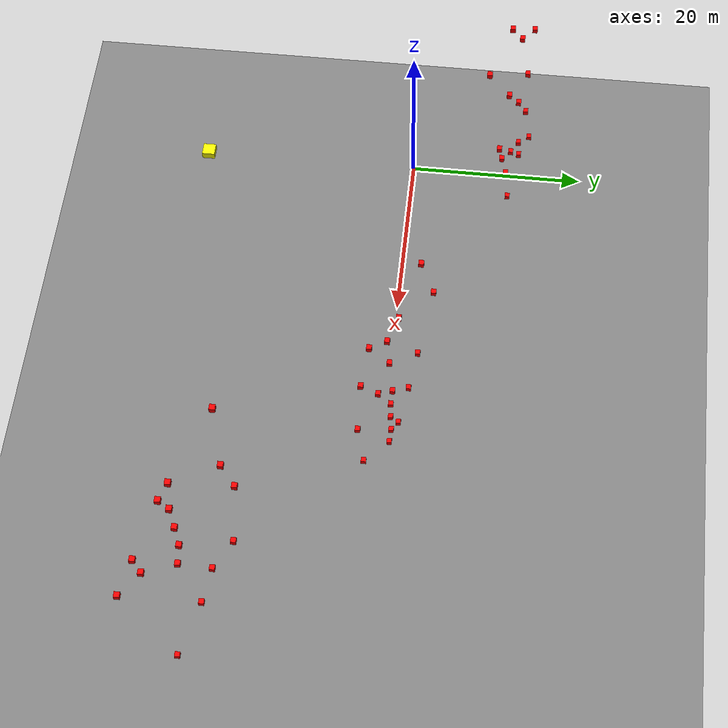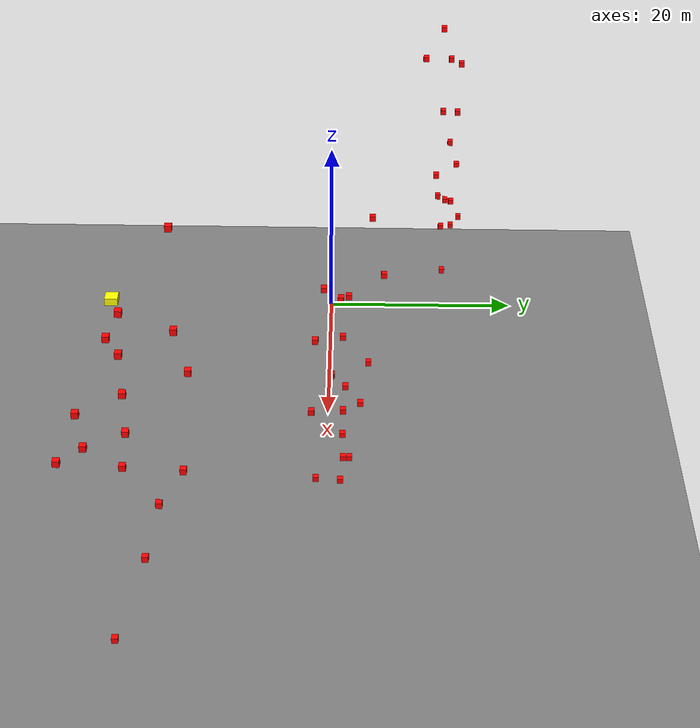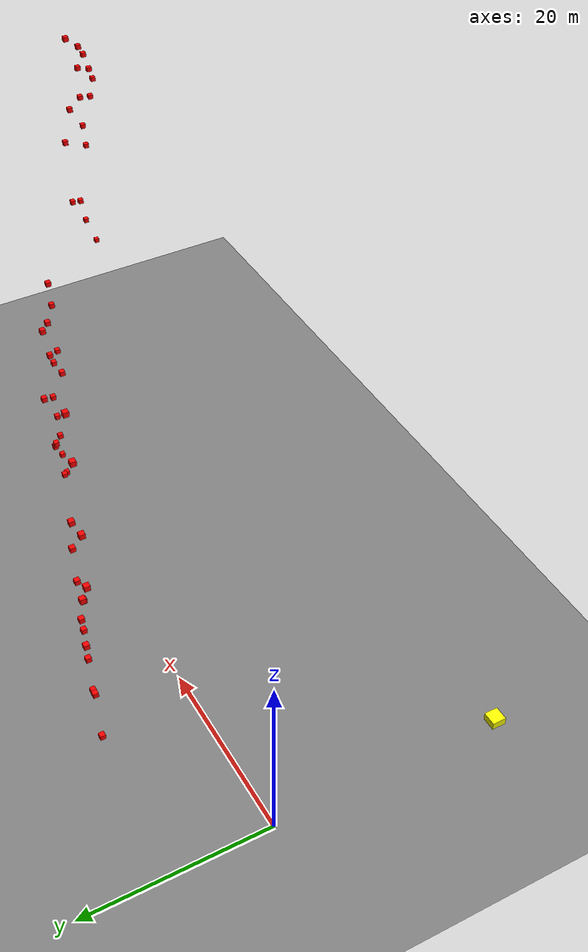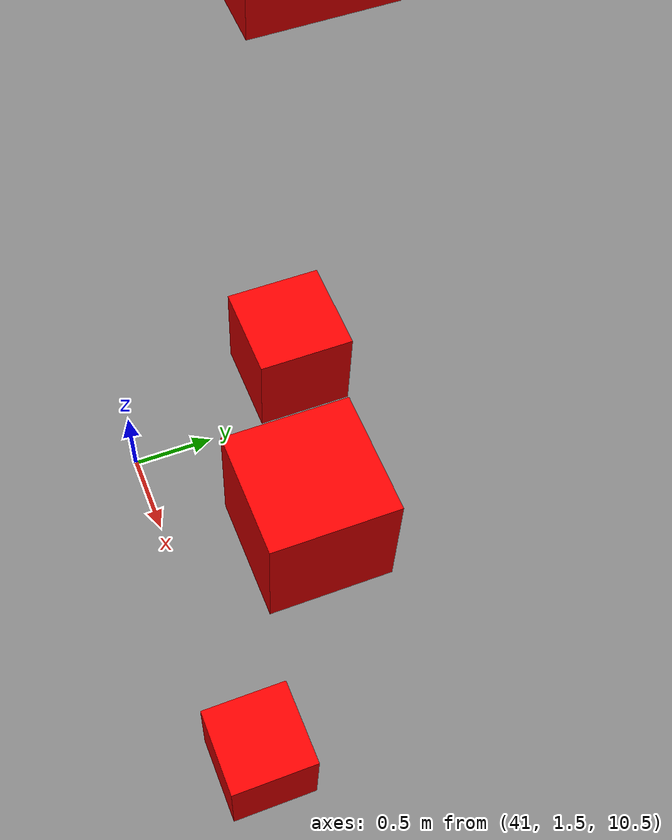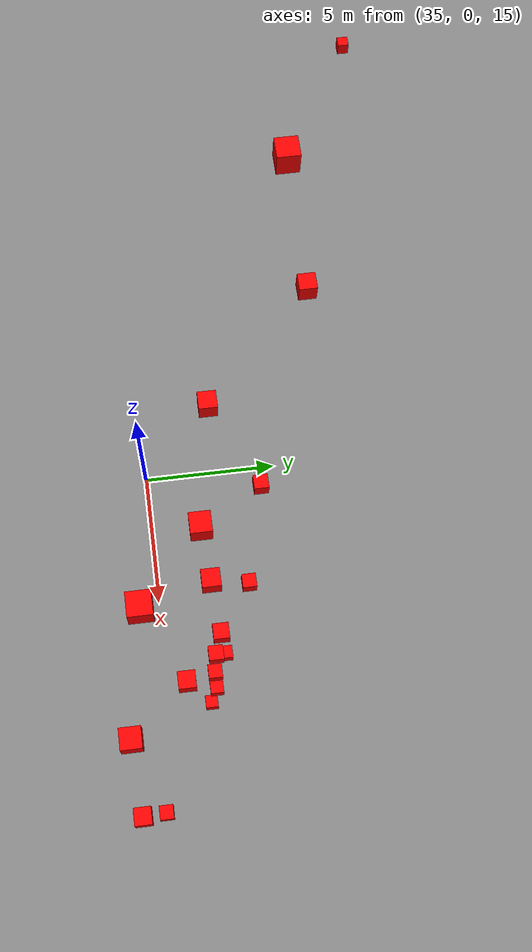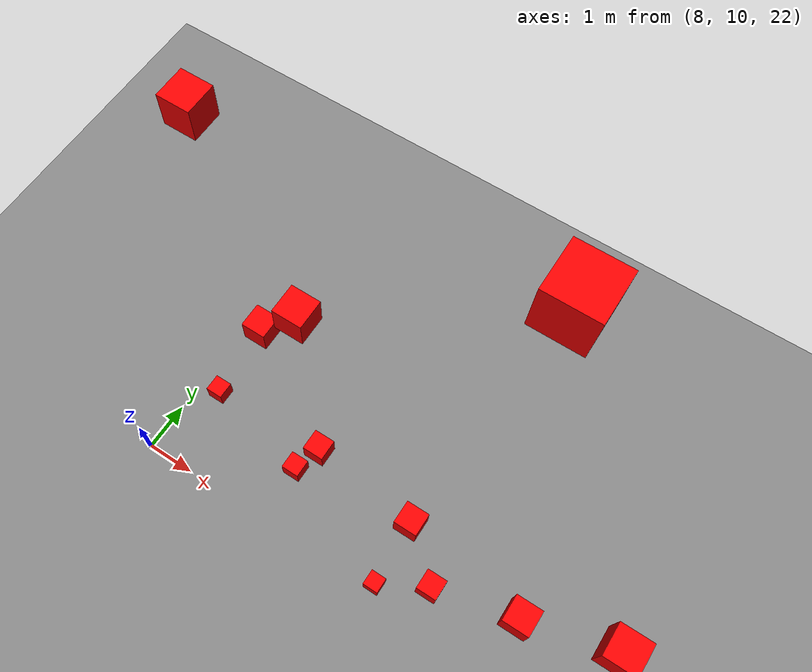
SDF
<sdf version="1.8">
 <world name="mbs_50_poi">
  <gravity>0 0 -9.8</gravity>
  <light name="sun" type="directional">
   <pose>0 0 10 0 -0 0</pose>
   <diffuse>0.8 0.8 0.8 1</diffuse>
   <specular>0.1 0.1 0.1 1</specular>
   <attenuation>
    <range>1000</range>
    <constant>0.9</constant>
    <linear>0.01</linear>
    <quadratic>0.001</quadratic>
   </attenuation>
   <direction>-0.5 0.5 -1</direction>
  </light>
  <model name="ground_plane">
   <static>true</static>
   <link name="link">
    <collision name="collision">
     <geometry><plane><normal>0 0 1</normal><size>2000 2000</size></plane></geometry>
     <surface><friction><ode><mu>100</mu><mu2>50</mu2></ode></friction></surface>
    </collision>
    <visual name="visual">
     <cast_shadows>false</cast_shadows>
     <geometry><plane><normal>0 0 1</normal><size>2000 2000</size></plane></geometry>
     <material>
      <ambient>0.5 0.5 0.5 1</ambient>
      <diffuse>0.5 0.5 0.5 1</diffuse>
      <specular>0.1 0.1 0.1 1</specular>
     </material>
    </visual>
   </link>
  </model>
  <model name="gcs">
   <pose>0 -25 0 0.0 0.0 0.0</pose>
   <static>true</static>
   <link name="link">
    <collision name="collision">
     <geometry><box><size>1.5 1.5 1.5</size></box></geometry>
     <surface><friction><ode><mu>0.8</mu><mu2>0.8</mu2></ode></friction></surface>
    </collision>
    <visual name="visual">
     <geometry><box><size>1.5 1.5 1.5</size></box></geometry>
     <material>
      <ambient>1.0 1.0 0.0 1.0</ambient>
      <diffuse>1.0 1.0 0.0 1.0</diffuse>
      <specular>1.0 0.2 0.0 1.0</specular>
     </material>
    </visual>
   </link>
  </model>
  <model name="poi_0000">
   <static>true</static>
   <link name="link">
    <visual name="visual">
     <geometry><box><size>0.5 0.5 0.5</size></box></geometry>
     <material><ambient>1 0 0 1</ambient><diffuse>1 0 0 1</diffuse><specular>0.2 0 0 1</specular></material>
    </visual>
   </link>
   <pose>12.574999809265137 11.559514999389648 13.199999809265137 0 0 0</pose>
  </model>
  <model name="poi_0001">
   <static>true</static>
   <link name="link">
    <visual name="visual">
     <geometry><box><size>0.5 0.5 0.5</size></box></geometry>
     <material><ambient>1 0 0 1</ambient><diffuse>1 0 0 1</diffuse><specular>0.2 0 0 1</specular></material>
    </visual>
   </link>
   <pose>9.3999996185302734 11.84 35.818099975585938 0 0 0</pose>
  </model>
  <model name="poi_0002">
   <static>true</static>
   <link name="link">
    <visual name="visual">
     <geometry><box><size>0.5 0.5 0.5</size></box></geometry>
     <material><ambient>1 0 0 1</ambient><diffuse>1 0 0 1</diffuse><specular>0.2 0 0 1</specular></material>
    </visual>
   </link>
   <pose>5.908289909362793 13.417082786560059 15.538000106811523 0 0 0</pose>
  </model>
  <model name="poi_0003">
   <static>true</static>
   <link name="link">
    <visual name="visual">
     <geometry><box><size>0.5 0.5 0.5</size></box></geometry>
     <material><ambient>1 0 0 1</ambient><diffuse>1 0 0 1</diffuse><specular>0.2 0 0 1</specular></material>
    </visual>
   </link>
   <pose>9.3999996185302734 12.43675422668457 16.707000732421875 0 0 0</pose>
  </model>
  <model name="poi_0004">
   <static>true</static>
   <link name="link">
    <visual name="visual">
     <geometry><box><size>0.5 0.5 0.5</size></box></geometry>
     <material><ambient>1 0 0 1</ambient><diffuse>1 0 0 1</diffuse><specular>0.2 0 0 1</specular></material>
    </visual>
   </link>
   <pose>18.264999389648438 9.00 40.39630126953125 0 0 0</pose>
  </model>
  <model name="poi_0005">
   <static>true</static>
   <link name="link">
    <visual name="visual">
     <geometry><box><size>0.5 0.5 0.5</size></box></geometry>
     <material><ambient>1 0 0 1</ambient><diffuse>1 0 0 1</diffuse><specular>0.2 0 0 1</specular></material>
    </visual>
   </link>
   <pose>14.155799865722656 11.184494018554688 19.538700103759766 0 0 0</pose>
  </model>
  <model name="poi_0006">
   <static>true</static>
   <link name="link">
    <visual name="visual">
     <geometry><box><size>0.5 0.5 0.5</size></box></geometry>
     <material><ambient>1 0 0 1</ambient><diffuse>1 0 0 1</diffuse><specular>0.2 0 0 1</specular></material>
    </visual>
   </link>
   <pose>10.444700241088867 12.299572944641113 20.214000701904297 0 0 0</pose>
  </model>
  <model name="poi_0007">
   <static>true</static>
   <link name="link">
    <visual name="visual">
     <geometry><box><size>0.5 0.5 0.5</size></box></geometry>
     <material><ambient>1 0 0 1</ambient><diffuse>1 0 0 1</diffuse><specular>0.2 0 0 1</specular></material>
    </visual>
   </link>
   <pose>12.406000137329102 10.834890365600586 40.570499420166016 0 0 0</pose>
  </model>
  <model name="poi_0008">
   <static>true</static>
   <link name="link">
    <visual name="visual">
     <geometry><box><size>0.5 0.5 0.5</size></box></geometry>
     <material><ambient>1 0 0 1</ambient><diffuse>1 0 0 1</diffuse><specular>0.2 0 0 1</specular></material>
    </visual>
   </link>
   <pose>13.218099594116211 11.557124137878418 22.072299957275391 0 0 0</pose>
  </model>
  <model name="poi_0009">
   <static>true</static>
   <link name="link">
    <visual name="visual">
     <geometry><box><size>0.5 0.5 0.5</size></box></geometry>
     <material><ambient>1 0 0 1</ambient><diffuse>1 0 0 1</diffuse><specular>0.2 0 0 1</specular></material>
    </visual>
   </link>
   <pose>8.96 12.795768737792969 23.721000671386719 0 0 0</pose>
  </model>
  <model name="poi_0010">
   <static>true</static>
   <link name="link">
    <visual name="visual">
     <geometry><box><size>0.5 0.5 0.5</size></box></geometry>
     <material><ambient>1 0 0 1</ambient><diffuse>1 0 0 1</diffuse><specular>0.2 0 0 1</specular></material>
    </visual>
   </link>
   <pose>15.722100257873535 10.695314407348633 24.046199798583984 0 0 0</pose>
  </model>
  <model name="poi_0011">
   <static>true</static>
   <link name="link">
    <visual name="visual">
     <geometry><box><size>0.5 0.5 0.5</size></box></geometry>
     <material><ambient>1 0 0 1</ambient><diffuse>1 0 0 1</diffuse><specular>0.2 0 0 1</specular></material>
    </visual>
   </link>
   <pose>14.22029972076416 10.983824729919434 32.6343994140625 0 0 0</pose>
  </model>
  <model name="poi_0012">
   <static>true</static>
   <link name="link">
    <visual name="visual">
     <geometry><box><size>0.5 0.5 0.5</size></box></geometry>
     <material><ambient>1 0 0 1</ambient><diffuse>1 0 0 1</diffuse><specular>0.2 0 0 1</specular></material>
    </visual>
   </link>
   <pose>10.657299995422363 11.966388702392578 27.228000640869141 0 0 0</pose>
  </model>
  <model name="poi_0013">
   <static>true</static>
   <link name="link">
    <visual name="visual">
     <geometry><box><size>0.5 0.5 0.5</size></box></geometry>
     <material><ambient>1 0 0 1</ambient><diffuse>1 0 0 1</diffuse><specular>0.2 0 0 1</specular></material>
    </visual>
   </link>
   <pose>16.750999450683594 10.405607223510742 26.993900299072266 0 0 0</pose>
  </model>
  <model name="poi_0014">
   <static>true</static>
   <link name="link">
    <visual name="visual">
     <geometry><box><size>0.5 0.5 0.5</size></box></geometry>
     <material><ambient>1 0 0 1</ambient><diffuse>1 0 0 1</diffuse><specular>0.2 0 0 1</specular></material>
    </visual>
   </link>
   <pose>8.6825199127197266 12.692320823669434 29.565999984741211 0 0 0</pose>
  </model>
  <model name="poi_0015">
   <static>true</static>
   <link name="link">
    <visual name="visual">
     <geometry><box><size>0.5 0.5 0.5</size></box></geometry>
     <material><ambient>1 0 0 1</ambient><diffuse>1 0 0 1</diffuse><specular>0.2 0 0 1</specular></material>
    </visual>
   </link>
   <pose>6.1462101936340332 13.03 33.647201538085938 0 0 0</pose>
  </model>
  <model name="poi_0016">
   <static>true</static>
   <link name="link">
    <visual name="visual">
     <geometry><box><size>0.5 0.5 0.5</size></box></geometry>
     <material><ambient>1 0 0 1</ambient><diffuse>1 0 0 1</diffuse><specular>0.2 0 0 1</specular></material>
    </visual>
   </link>
   <pose>43.090000152587891 1.5681102275848389 10.590000152587891 0 0 0</pose>
  </model>
  <model name="poi_0017">
   <static>true</static>
   <link name="link">
    <visual name="visual">
     <geometry><box><size>0.5 0.5 0.5</size></box></geometry>
     <material><ambient>1 0 0 1</ambient><diffuse>1 0 0 1</diffuse><specular>0.2 0 0 1</specular></material>
    </visual>
   </link>
   <pose>41.467601776123047 2.3524768352508545 11.916999816894531 0 0 0</pose>
  </model>
  <model name="poi_0018">
   <static>true</static>
   <link name="link">
    <visual name="visual">
     <geometry><box><size>0.5 0.5 0.5</size></box></geometry>
     <material><ambient>1 0 0 1</ambient><diffuse>1 0 0 1</diffuse><specular>0.2 0 0 1</specular></material>
    </visual>
   </link>
   <pose>43.090000152587891 1.7920757532119751 13.244000434875488 0 0 0</pose>
  </model>
  <model name="poi_0019">
   <static>true</static>
   <link name="link">
    <visual name="visual">
     <geometry><box><size>0.5 0.5 0.5</size></box></geometry>
     <material><ambient>1 0 0 1</ambient><diffuse>1 0 0 1</diffuse><specular>0.2 0 0 1</specular></material>
    </visual>
   </link>
   <pose>47.593257904052734 -0.51557397842407227 14.571000099182129 0 0 0</pose>
  </model>
  <model name="poi_0020">
   <static>true</static>
   <link name="link">
    <visual name="visual">
     <geometry><box><size>0.5 0.5 0.5</size></box></geometry>
     <material><ambient>1 0 0 1</ambient><diffuse>1 0 0 1</diffuse><specular>0.2 0 0 1</specular></material>
    </visual>
   </link>
   <pose>43.090000152587891 1.7522130012512207 15.89799976348877 0 0 0</pose>
  </model>
  <model name="poi_0021">
   <static>true</static>
   <link name="link">
    <visual name="visual">
     <geometry><box><size>0.5 0.5 0.5</size></box></geometry>
     <material><ambient>1 0 0 1</ambient><diffuse>1 0 0 1</diffuse><specular>0.2 0 0 1</specular></material>
    </visual>
   </link>
   <pose>40.321701049804688 3.299736499786377 17.225000381469727 0 0 0</pose>
  </model>
  <model name="poi_0022">
   <static>true</static>
   <link name="link">
    <visual name="visual">
     <geometry><box><size>0.5 0.5 0.5</size></box></geometry>
     <material><ambient>1 0 0 1</ambient><diffuse>1 0 0 1</diffuse><specular>0.2 0 0 1</specular></material>
    </visual>
   </link>
   <pose>43.090000152587891 1.7990800142288208 18.552000045776367 0 0 0</pose>
  </model>
  <model name="poi_0023">
   <static>true</static>
   <link name="link">
    <visual name="visual">
     <geometry><box><size>0.5 0.5 0.5</size></box></geometry>
     <material><ambient>1 0 0 1</ambient><diffuse>1 0 0 1</diffuse><specular>0.2 0 0 1</specular></material>
    </visual>
   </link>
   <pose>37.762100219726562 3.969306468963623 19.878999710083008 0 0 0</pose>
  </model>
  <model name="poi_0024">
   <static>true</static>
   <link name="link">
    <visual name="visual">
     <geometry><box><size>0.5 0.5 0.5</size></box></geometry>
     <material><ambient>1 0 0 1</ambient><diffuse>1 0 0 1</diffuse><specular>0.2 0 0 1</specular></material>
    </visual>
   </link>
   <pose>43.090000152587891 1.9758154153823853 21.205999374389648 0 0 0</pose>
  </model>
  <model name="poi_0025">
   <static>true</static>
   <link name="link">
    <visual name="visual">
     <geometry><box><size>0.5 0.5 0.5</size></box></geometry>
     <material><ambient>1 0 0 1</ambient><diffuse>1 0 0 1</diffuse><specular>0.2 0 0 1</specular></material>
    </visual>
   </link>
   <pose>48.405300140380859 -0.83510744571685791 22.533000946044922 0 0 0</pose>
  </model>
  <model name="poi_0026">
   <static>true</static>
   <link name="link">
    <visual name="visual">
     <geometry><box><size>0.5 0.5 0.5</size></box></geometry>
     <material><ambient>1 0 0 1</ambient><diffuse>1 0 0 1</diffuse><specular>0.2 0 0 1</specular></material>
    </visual>
   </link>
   <pose>45.056800842285156 0.8009980320930481 23.860000610351562 0 0 0</pose>
  </model>
  <model name="poi_0027">
   <static>true</static>
   <link name="link">
    <visual name="visual">
     <geometry><box><size>0.5 0.5 0.5</size></box></geometry>
     <material><ambient>1 0 0 1</ambient><diffuse>1 0 0 1</diffuse><specular>0.2 0 0 1</specular></material>
    </visual>
   </link>
   <pose>36.79 4.14 34.59 0 0 0</pose>
  </model>
  <model name="poi_0028">
   <static>true</static>
   <link name="link">
    <visual name="visual">
     <geometry><box><size>0.5 0.5 0.5</size></box></geometry>
     <material><ambient>1 0 0 1</ambient><diffuse>1 0 0 1</diffuse><specular>0.2 0 0 1</specular></material>
    </visual>
   </link>
   <pose>43.090000152587891 1.728690505027771 26.513999938964844 0 0 0</pose>
  </model>
  <model name="poi_0029">
   <static>true</static>
   <link name="link">
    <visual name="visual">
     <geometry><box><size>0.5 0.5 0.5</size></box></geometry>
     <material><ambient>1 0 0 1</ambient><diffuse>1 0 0 1</diffuse><specular>0.2 0 0 1</specular></material>
    </visual>
   </link>
   <pose>35.493400573730469 5.2652435302734375 27.840999603271484 0 0 0</pose>
  </model>
  <model name="poi_0030">
   <static>true</static>
   <link name="link">
    <visual name="visual">
     <geometry><box><size>0.5 0.5 0.5</size></box></geometry>
     <material><ambient>1 0 0 1</ambient><diffuse>1 0 0 1</diffuse><specular>0.2 0 0 1</specular></material>
    </visual>
   </link>
   <pose>47.38201904296875 -0.50696998834609985 29.167999267578125 0 0 0</pose>
  </model>
  <model name="poi_0031">
   <static>true</static>
   <link name="link">
    <visual name="visual">
     <geometry><box><size>0.5 0.5 0.5</size></box></geometry>
     <material><ambient>1 0 0 1</ambient><diffuse>1 0 0 1</diffuse><specular>0.2 0 0 1</specular></material>
    </visual>
   </link>
   <pose>43.090000152587891 1.5447119474411011 30.495000839233398 0 0 0</pose>
  </model>
  <model name="poi_0032">
   <static>true</static>
   <link name="link">
    <visual name="visual">
     <geometry><box><size>0.5 0.5 0.5</size></box></geometry>
     <material><ambient>1 0 0 1</ambient><diffuse>1 0 0 1</diffuse><specular>0.2 0 0 1</specular></material>
    </visual>
   </link>
   <pose>38.603599548339844 2.177570104598999 27.622108459472656 0 0 0</pose>
  </model>
  <model name="poi_0033">
   <static>true</static>
   <link name="link">
    <visual name="visual">
     <geometry><box><size>0.5 0.5 0.5</size></box></geometry>
     <material><ambient>1 0 0 1</ambient><diffuse>1 0 0 1</diffuse><specular>0.2 0 0 1</specular></material>
    </visual>
   </link>
   <pose>45.594970703125 0.16066500544548035 33.148998260498047 0 0 0</pose>
  </model>
  <model name="poi_0034">
   <static>true</static>
   <link name="link">
    <visual name="visual">
     <geometry><box><size>0.5 0.5 0.5</size></box></geometry>
     <material><ambient>1 0 0 1</ambient><diffuse>1 0 0 1</diffuse><specular>0.2 0 0 1</specular></material>
    </visual>
   </link>
   <pose>68.571098327636719 -13.788274765014648 33.130001068115234 0 0 0</pose>
  </model>
  <model name="poi_0035">
   <static>true</static>
   <link name="link">
    <visual name="visual">
     <geometry><box><size>0.5 0.5 0.5</size></box></geometry>
     <material><ambient>1 0 0 1</ambient><diffuse>1 0 0 1</diffuse><specular>0.2 0 0 1</specular></material>
    </visual>
   </link>
   <pose>64.239799499511719 -9.9481945037841797 29.21980094909668 0 0 0</pose>
  </model>
  <model name="poi_0036">
   <static>true</static>
   <link name="link">
    <visual name="visual">
     <geometry><box><size>0.5 0.5 0.5</size></box></geometry>
     <material><ambient>1 0 0 1</ambient><diffuse>1 0 0 1</diffuse><specular>0.2 0 0 1</specular></material>
    </visual>
   </link>
   <pose>68.080001831054688 -12.708561897277832 23.89900016784668 0 0 0</pose>
  </model>
  <model name="poi_0037">
   <static>true</static>
   <link name="link">
    <visual name="visual">
     <geometry><box><size>0.5 0.5 0.5</size></box></geometry>
     <material><ambient>1 0 0 1</ambient><diffuse>1 0 0 1</diffuse><specular>0.2 0 0 1</specular></material>
    </visual>
   </link>
   <pose>62.910900115966797 -9.372319221496582 37.474498748779297 0 0 0</pose>
  </model>
  <model name="poi_0038">
   <static>true</static>
   <link name="link">
    <visual name="visual">
     <geometry><box><size>0.5 0.5 0.5</size></box></geometry>
     <material><ambient>1 0 0 1</ambient><diffuse>1 0 0 1</diffuse><specular>0.2 0 0 1</specular></material>
    </visual>
   </link>
   <pose>68.080001831054688 -13.454799652099609 35.889999389648438 0 0 0</pose>
  </model>
  <model name="poi_0039">
   <static>true</static>
   <link name="link">
    <visual name="visual">
     <geometry><box><size>0.5 0.5 0.5</size></box></geometry>
     <material><ambient>1 0 0 1</ambient><diffuse>1 0 0 1</diffuse><specular>0.2 0 0 1</specular></material>
    </visual>
   </link>
   <pose>71.757499694824219 -16.185430526733398 40.422100067138672 0 0 0</pose>
  </model>
  <model name="poi_0040">
   <static>true</static>
   <link name="link">
    <visual name="visual">
     <geometry><box><size>0.5 0.5 0.5</size></box></geometry>
     <material><ambient>1 0 0 1</ambient><diffuse>1 0 0 1</diffuse><specular>0.2 0 0 1</specular></material>
    </visual>
   </link>
   <pose>71.474800109863281 -15.929194450378418 37.270000457763672 0 0 0</pose>
  </model>
  <model name="poi_0041">
   <static>true</static>
   <link name="link">
    <visual name="visual">
     <geometry><box><size>0.5 0.5 0.5</size></box></geometry>
     <material><ambient>1 0 0 1</ambient><diffuse>1 0 0 1</diffuse><specular>0.2 0 0 1</specular></material>
    </visual>
   </link>
   <pose>73.964599609375 -17.37324333190918 37.959999084472656 0 0 0</pose>
  </model>
  <model name="poi_0042">
   <static>true</static>
   <link name="link">
    <visual name="visual">
     <geometry><box><size>0.5 0.5 0.5</size></box></geometry>
     <material><ambient>1 0 0 1</ambient><diffuse>1 0 0 1</diffuse><specular>0.2 0 0 1</specular></material>
    </visual>
   </link>
   <pose>62.901901245117188 -10.250583648681641 41.135601043701172 0 0 0</pose>
  </model>
  <model name="poi_0043">
   <static>true</static>
   <link name="link">
    <visual name="visual">
     <geometry><box><size>0.5 0.5 0.5</size></box></geometry>
     <material><ambient>1 0 0 1</ambient><diffuse>1 0 0 1</diffuse><specular>0.2 0 0 1</specular></material>
    </visual>
   </link>
   <pose>68.080001831054688 -13.457438468933105 39.340000152587891 0 0 0</pose>
  </model>
  <model name="poi_0044">
   <static>true</static>
   <link name="link">
    <visual name="visual">
     <geometry><box><size>0.5 0.5 0.5</size></box></geometry>
     <material><ambient>1 0 0 1</ambient><diffuse>1 0 0 1</diffuse><specular>0.2 0 0 1</specular></material>
    </visual>
   </link>
   <pose>71.27 -14.95 18.59 0 0 0</pose>
  </model>
  <model name="poi_0045">
   <static>true</static>
   <link name="link">
    <visual name="visual">
     <geometry><box><size>0.5 0.5 0.5</size></box></geometry>
     <material><ambient>1 0 0 1</ambient><diffuse>1 0 0 1</diffuse><specular>0.2 0 0 1</specular></material>
    </visual>
   </link>
   <pose>66.358200073242188 -11.65 27.72 0 0 0</pose>
  </model>
  <model name="poi_0046">
   <static>true</static>
   <link name="link">
    <visual name="visual">
     <geometry><box><size>0.5 0.5 0.5</size></box></geometry>
     <material><ambient>1 0 0 1</ambient><diffuse>1 0 0 1</diffuse><specular>0.2 0 0 1</specular></material>
    </visual>
   </link>
   <pose>67.158401489257812 -13.442999839782715 45.666515350341797 0 0 0</pose>
  </model>
  <model name="poi_0047">
   <static>true</static>
   <link name="link">
    <visual name="visual">
     <geometry><box><size>0.5 0.5 0.5</size></box></geometry>
     <material><ambient>1 0 0 1</ambient><diffuse>1 0 0 1</diffuse><specular>0.2 0 0 1</specular></material>
    </visual>
   </link>
   <pose>68.080001831054688 -14.277400970458984 44.193401336669922 0 0 0</pose>
  </model>
  <model name="poi_0048">
   <static>true</static>
   <link name="link">
    <visual name="visual">
     <geometry><box><size>0.5 0.5 0.5</size></box></geometry>
     <material><ambient>1 0 0 1</ambient><diffuse>1 0 0 1</diffuse><specular>0.2 0 0 1</specular></material>
    </visual>
   </link>
   <pose>68.080001831054688 -13.512066841125488 42.790000915527344 0 0 0</pose>
  </model>
  <model name="poi_0049">
   <static>true</static>
   <link name="link">
    <visual name="visual">
     <geometry><box><size>0.5 0.5 0.5</size></box></geometry>
     <material><ambient>1 0 0 1</ambient><diffuse>1 0 0 1</diffuse><specular>0.2 0 0 1</specular></material>
    </visual>
   </link>
   <pose>62.091300964355469 -10.291632652282715 49.399700164794922 0 0 0</pose>
  </model>
  <physics name="default_physics" default="true" type="ode">
   <max_step_size>0.002</max_step_size>
   <real_time_factor>1.0</real_time_factor>
   <real_time_update_rate>500</real_time_update_rate>
  </physics>
  <scene><ambient>0.4 0.4 0.4 1</ambient><background>0.7 0.7 0.7 1</background><shadows>true</shadows></scene>
  <spherical_coordinates>
   <surface_model>EARTH_WGS84</surface_model>
   <latitude_deg>0</latitude_deg>
   <longitude_deg>0</longitude_deg>
   <elevation>0</elevation>
   <heading_deg>0</heading_deg>
  </spherical_coordinates>
 </world>
</sdf>
